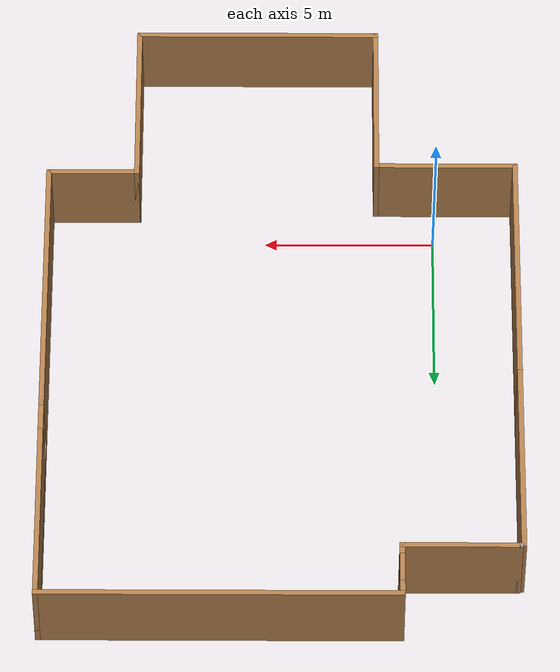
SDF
<?xml version='1.0'?>
<sdf version='1.7'>
  <model name='Walls'>
    <pose>4.49878 3.86295 0 0 -0 0</pose>
    <link name='Wall_0'>
      <collision name='Wall_0_Collision'>
        <geometry>
          <box>
            <size>7.5 0.15 2.5</size>
          </box>
        </geometry>
        <pose>0 0 1.25 0 -0 0</pose>
      </collision>
      <visual name='Wall_0_Visual'>
        <pose>0 0 1.25 0 -0 0</pose>
        <geometry>
          <box>
            <size>7.5 0.15 2.5</size>
          </box>
        </geometry>
        <material>
          <script>
            <uri>file://media/materials/scripts/gazebo.material</uri>
            <name>Gazebo/Wood</name>
          </script>
          <ambient>1 1 1 1</ambient>
        </material>
        <meta>
          <layer>0</layer>
        </meta>
      </visual>
      <pose>-6.9 -1.325 0 0 -0 -1.5708</pose>
    </link>
    <link name='Wall_10'>
      <collision name='Wall_10_Collision'>
        <geometry>
          <box>
            <size>7.25 0.15 2.5</size>
          </box>
        </geometry>
        <pose>0 0 1.25 0 -0 0</pose>
      </collision>
      <visual name='Wall_10_Visual'>
        <pose>0 0 1.25 0 -0 0</pose>
        <geometry>
          <box>
            <size>7.25 0.15 2.5</size>
          </box>
        </geometry>
        <material>
          <script>
            <uri>file://media/materials/scripts/gazebo.material</uri>
            <name>Gazebo/Wood</name>
          </script>
          <ambient>1 1 1 1</ambient>
        </material>
        <meta>
          <layer>0</layer>
        </meta>
      </visual>
      <pose>0.75 -9.85 0 0 -0 0</pose>
    </link>
    <link name='Wall_12'>
      <collision name='Wall_12_Collision'>
        <geometry>
          <box>
            <size>5.25 0.15 2.5</size>
          </box>
        </geometry>
        <pose>0 0 1.25 0 -0 0</pose>
      </collision>
      <visual name='Wall_12_Visual'>
        <pose>0 0 1.25 0 -0 0</pose>
        <geometry>
          <box>
            <size>5.25 0.15 2.5</size>
          </box>
        </geometry>
        <material>
          <script>
            <uri>file://media/materials/scripts/gazebo.material</uri>
            <name>Gazebo/Wood</name>
          </script>
          <ambient>1 1 1 1</ambient>
        </material>
        <meta>
          <layer>0</layer>
        </meta>
      </visual>
      <pose>4.3 -7.3 0 0 -0 1.5708</pose>
    </link>
    <link name='Wall_13'>
      <collision name='Wall_13_Collision'>
        <geometry>
          <box>
            <size>2.75 0.15 2.5</size>
          </box>
        </geometry>
        <pose>0 0 1.25 0 -0 0</pose>
      </collision>
      <visual name='Wall_13_Visual'>
        <pose>0 0 1.25 0 -0 0</pose>
        <geometry>
          <box>
            <size>2.75 0.15 2.5</size>
          </box>
        </geometry>
        <material>
          <script>
            <uri>file://media/materials/scripts/gazebo.material</uri>
            <name>Gazebo/Wood</name>
          </script>
          <ambient>1 1 1 1</ambient>
        </material>
        <meta>
          <layer>0</layer>
        </meta>
      </visual>
      <pose>5.6 -4.75 0 0 -0 0</pose>
    </link>
    <link name='Wall_14'>
      <pose>6.9 2.55 0 0 -0 1.5708</pose>
      <visual name='Wall_14_Visual_0'>
        <pose>-3.18793 0 1.25 0 -0 0</pose>
        <geometry>
          <box>
            <size>8.37415 0.15 2.5</size>
          </box>
        </geometry>
        <material>
          <script>
            <uri>file://media/materials/scripts/gazebo.material</uri>
            <name>Gazebo/Wood</name>
          </script>
          <ambient>1 1 1 1</ambient>
        </material>
        <meta>
          <layer>0</layer>
        </meta>
      </visual>
      <collision name='Wall_14_Collision_0'>
        <geometry>
          <box>
            <size>8.37415 0.15 2.5</size>
          </box>
        </geometry>
        <pose>-3.18793 0 1.25 0 -0 0</pose>
      </collision>
      <visual name='Wall_14_Visual_1'>
        <pose>4.18707 0 0.25 0 -0 0</pose>
        <geometry>
          <box>
            <size>6.37585 0.15 0.5</size>
          </box>
        </geometry>
        <material>
          <script>
            <uri>file://media/materials/scripts/gazebo.material</uri>
            <name>Gazebo/Wood</name>
          </script>
          <ambient>1 1 1 1</ambient>
        </material>
        <meta>
          <layer>0</layer>
        </meta>
      </visual>
      <collision name='Wall_14_Collision_1'>
        <geometry>
          <box>
            <size>6.37585 0.15 0.5</size>
          </box>
        </geometry>
        <pose>4.18707 0 0.25 0 -0 0</pose>
      </collision>
      <visual name='Wall_14_Visual_2'>
        <pose>4.58707 0 1.5 0 -0 0</pose>
        <geometry>
          <box>
            <size>5.57585 0.15 2</size>
          </box>
        </geometry>
        <material>
          <script>
            <uri>file://media/materials/scripts/gazebo.material</uri>
            <name>Gazebo/Wood</name>
          </script>
          <ambient>1 1 1 1</ambient>
        </material>
        <meta>
          <layer>0</layer>
        </meta>
      </visual>
      <collision name='Wall_14_Collision_2'>
        <geometry>
          <box>
            <size>5.57585 0.15 2</size>
          </box>
        </geometry>
        <pose>4.58707 0 1.5 0 -0 0</pose>
      </collision>
      <visual name='Wall_14_Visual_3'>
        <pose>1.39915 0 1.9 0 -0 0</pose>
        <geometry>
          <box>
            <size>0.8 0.15 1.2</size>
          </box>
        </geometry>
        <material>
          <script>
            <uri>file://media/materials/scripts/gazebo.material</uri>
            <name>Gazebo/Wood</name>
          </script>
          <ambient>1 1 1 1</ambient>
        </material>
        <meta>
          <layer>0</layer>
        </meta>
      </visual>
      <collision name='Wall_14_Collision_3'>
        <geometry>
          <box>
            <size>0.8 0.15 1.2</size>
          </box>
        </geometry>
        <pose>1.39915 0 1.9 0 -0 0</pose>
      </collision>
    </link>
    <link name='Wall_15'>
      <collision name='Wall_15_Collision'>
        <geometry>
          <box>
            <size>10.5 0.15 2.5</size>
          </box>
        </geometry>
        <pose>0 0 1.25 0 -0 0</pose>
      </collision>
      <visual name='Wall_15_Visual'>
        <pose>0 0 1.25 0 -0 0</pose>
        <geometry>
          <box>
            <size>10.5 0.15 2.5</size>
          </box>
        </geometry>
        <material>
          <script>
            <uri>file://media/materials/scripts/gazebo.material</uri>
            <name>Gazebo/Wood</name>
          </script>
          <ambient>1 1 1 1</ambient>
        </material>
        <meta>
          <layer>0</layer>
        </meta>
      </visual>
      <pose>1.725 9.85 0 0 -0 3.14159</pose>
    </link>
    <link name='Wall_16'>
      <pose>-3.45 9.05 0 0 -0 -1.5708</pose>
      <visual name='Wall_16_Visual_0'>
        <pose>-0.623949 0 1.25 0 -0 0</pose>
        <geometry>
          <box>
            <size>0.502102 0.15 2.5</size>
          </box>
        </geometry>
        <material>
          <script>
            <uri>file://media/materials/scripts/gazebo.material</uri>
            <name>Gazebo/Wood</name>
          </script>
          <ambient>1 1 1 1</ambient>
        </material>
        <meta>
          <layer>0</layer>
        </meta>
      </visual>
      <collision name='Wall_16_Collision_0'>
        <geometry>
          <box>
            <size>0.502102 0.15 2.5</size>
          </box>
        </geometry>
        <pose>-0.623949 0 1.25 0 -0 0</pose>
      </collision>
      <visual name='Wall_16_Visual_1'>
        <pose>0.701051 0 1.25 0 -0 0</pose>
        <geometry>
          <box>
            <size>0.347898 0.15 2.5</size>
          </box>
        </geometry>
        <material>
          <script>
            <uri>file://media/materials/scripts/gazebo.material</uri>
            <name>Gazebo/Wood</name>
          </script>
          <ambient>1 1 1 1</ambient>
        </material>
        <meta>
          <layer>0</layer>
        </meta>
      </visual>
      <collision name='Wall_16_Collision_1'>
        <geometry>
          <box>
            <size>0.347898 0.15 2.5</size>
          </box>
        </geometry>
        <pose>0.701051 0 1.25 0 -0 0</pose>
      </collision>
      <visual name='Wall_16_Visual_2'>
        <pose>0.077102 0 2.25 0 -0 0</pose>
        <geometry>
          <box>
            <size>0.9 0.15 0.5</size>
          </box>
        </geometry>
        <material>
          <script>
            <uri>file://media/materials/scripts/gazebo.material</uri>
            <name>Gazebo/Wood</name>
          </script>
          <ambient>1 1 1 1</ambient>
        </material>
        <meta>
          <layer>0</layer>
        </meta>
      </visual>
      <collision name='Wall_16_Collision_2'>
        <geometry>
          <box>
            <size>0.9 0.15 0.5</size>
          </box>
        </geometry>
        <pose>0.077102 0 2.25 0 -0 0</pose>
      </collision>
    </link>
    <link name='Wall_17'>
      <collision name='Wall_17_Collision'>
        <geometry>
          <box>
            <size>3.5 0.15 2.5</size>
          </box>
        </geometry>
        <pose>0 0 1.25 0 -0 0</pose>
      </collision>
      <visual name='Wall_17_Visual'>
        <pose>0 0 1.25 0 -0 0</pose>
        <geometry>
          <box>
            <size>3.5 0.15 2.5</size>
          </box>
        </geometry>
        <material>
          <script>
            <uri>file://media/materials/scripts/gazebo.material</uri>
            <name>Gazebo/Wood</name>
          </script>
          <ambient>1 1 1 1</ambient>
        </material>
        <meta>
          <layer>0</layer>
        </meta>
      </visual>
      <pose>-5.125 8.25 0 0 -0 3.14159</pose>
    </link>
    <link name='Wall_18'>
      <collision name='Wall_18_Collision'>
        <geometry>
          <box>
            <size>0.15 0.15 2.5</size>
          </box>
        </geometry>
        <pose>0 0 1.25 0 -0 0</pose>
      </collision>
      <visual name='Wall_18_Visual'>
        <pose>0 0 1.25 0 -0 0</pose>
        <geometry>
          <box>
            <size>0.15 0.15 2.5</size>
          </box>
        </geometry>
        <material>
          <script>
            <uri>file://media/materials/scripts/gazebo.material</uri>
            <name>Gazebo/Grey</name>
          </script>
          <ambient>1 1 1 1</ambient>
        </material>
        <meta>
          <layer>0</layer>
        </meta>
      </visual>
      <pose>-6.8 8.25 0 0 -0 0</pose>
    </link>
    <link name='Wall_21'>
      <collision name='Wall_21_Collision'>
        <geometry>
          <box>
            <size>6 0.15 2.5</size>
          </box>
        </geometry>
        <pose>0 0 1.25 0 -0 0</pose>
      </collision>
      <visual name='Wall_21_Visual'>
        <pose>0 0 1.25 0 -0 0</pose>
        <geometry>
          <box>
            <size>6 0.15 2.5</size>
          </box>
        </geometry>
        <material>
          <script>
            <uri>file://media/materials/scripts/gazebo.material</uri>
            <name>Gazebo/Wood</name>
          </script>
          <ambient>1 1 1 1</ambient>
        </material>
        <meta>
          <layer>0</layer>
        </meta>
      </visual>
      <pose>-6.9 5.275 0 0 -0 1.5708</pose>
    </link>
    <link name='Wall_8'>
      <collision name='Wall_8_Collision'>
        <geometry>
          <box>
            <size>4.25 0.15 2.5</size>
          </box>
        </geometry>
        <pose>0 0 1.25 0 -0 0</pose>
      </collision>
      <visual name='Wall_8_Visual'>
        <pose>0 0 1.25 0 -0 0</pose>
        <geometry>
          <box>
            <size>4.25 0.15 2.5</size>
          </box>
        </geometry>
        <material>
          <script>
            <uri>file://media/materials/scripts/gazebo.material</uri>
            <name>Gazebo/Wood</name>
          </script>
          <ambient>0.760784 0.662745 0.627451 1</ambient>
        </material>
        <meta>
          <layer>0</layer>
        </meta>
      </visual>
      <pose>-4.85 -5 0 0 -0 0</pose>
    </link>
    <link name='Wall_9'>
      <collision name='Wall_9_Collision'>
        <geometry>
          <box>
            <size>5 0.15 2.5</size>
          </box>
        </geometry>
        <pose>0 0 1.25 0 -0 0</pose>
      </collision>
      <visual name='Wall_9_Visual'>
        <pose>0 0 1.25 0 -0 0</pose>
        <geometry>
          <box>
            <size>5 0.15 2.5</size>
          </box>
        </geometry>
        <material>
          <script>
            <uri>file://media/materials/scripts/gazebo.material</uri>
            <name>Gazebo/Wood</name>
          </script>
          <ambient>1 1 1 1</ambient>
        </material>
        <meta>
          <layer>0</layer>
        </meta>
      </visual>
      <pose>-2.8 -7.425 0 0 -0 -1.5708</pose>
    </link>
    <static>1</static>
  </model>
</sdf>
